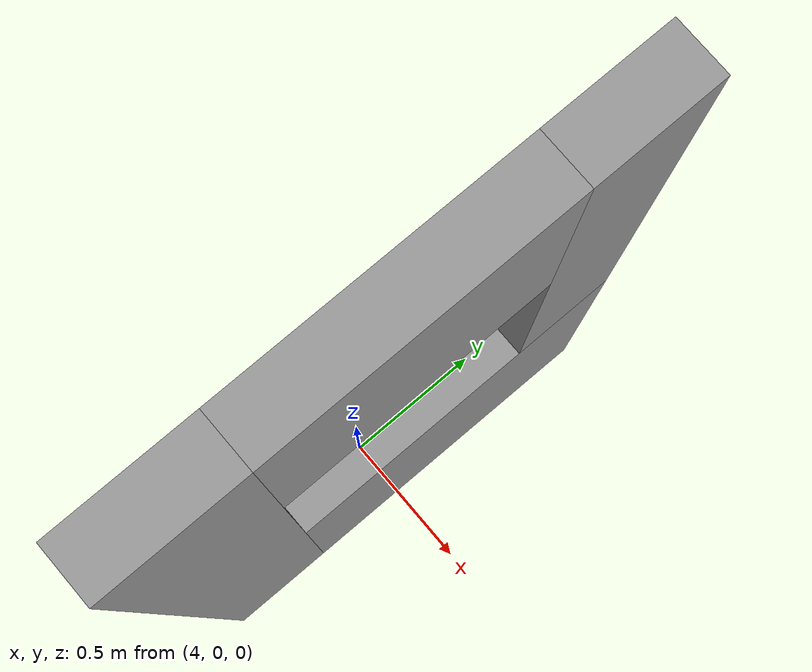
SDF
<?xml version='1.0'?>
<sdf version='1.7'>
  <model name='window.model'>
    <pose>2.1025 0.045 0 0 -0 0</pose>
    <link name='Wall_5'>
      <pose>2.0275 -0 0 0 -0 1.5708</pose>
      <visual name='Wall_5_Visual_0'>
        <pose>-0.5675 0 1.25 0 -0 0</pose>
        <geometry>
          <box>
            <size>0.365 0.15 2.5</size>
          </box>
        </geometry>
        <material>
          <script>
            <uri>file://media/materials/scripts/gazebo.material</uri>
            <name>Gazebo/Grey</name>
          </script>
          <ambient>1 1 1 1</ambient>
        </material>
        <meta>
          <layer>0</layer>
        </meta>
      </visual>
      <collision name='Wall_5_Collision_0'>
        <geometry>
          <box>
            <size>0.365 0.15 2.5</size>
          </box>
        </geometry>
        <pose>-0.5675 0 1.25 0 -0 0</pose>
      </collision>
      <visual name='Wall_5_Visual_1'>
        <pose>0.1825 0 0.5 0 -0 0</pose>
        <geometry>
          <box>
            <size>1.135 0.15 1</size>
          </box>
        </geometry>
        <material>
          <script>
            <uri>file://media/materials/scripts/gazebo.material</uri>
            <name>Gazebo/Grey</name>
          </script>
          <ambient>1 1 1 1</ambient>
        </material>
        <meta>
          <layer>0</layer>
        </meta>
      </visual>
      <collision name='Wall_5_Collision_1'>
        <geometry>
          <box>
            <size>1.135 0.15 1</size>
          </box>
        </geometry>
        <pose>0.1825 0 0.5 0 -0 0</pose>
      </collision>
      <visual name='Wall_5_Visual_2'>
        <pose>0.5825 0 1.75 0 -0 0</pose>
        <geometry>
          <box>
            <size>0.335 0.15 1.5</size>
          </box>
        </geometry>
        <material>
          <script>
            <uri>file://media/materials/scripts/gazebo.material</uri>
            <name>Gazebo/Grey</name>
          </script>
          <ambient>1 1 1 1</ambient>
        </material>
        <meta>
          <layer>0</layer>
        </meta>
      </visual>
      <collision name='Wall_5_Collision_2'>
        <geometry>
          <box>
            <size>0.335 0.15 1.5</size>
          </box>
        </geometry>
        <pose>0.5825 0 1.75 0 -0 0</pose>
      </collision>
      <visual name='Wall_5_Visual_3'>
        <pose>0.015 0 2.15 0 -0 0</pose>
        <geometry>
          <box>
            <size>0.8 0.15 0.7</size>
          </box>
        </geometry>
        <material>
          <script>
            <uri>file://media/materials/scripts/gazebo.material</uri>
            <name>Gazebo/Grey</name>
          </script>
          <ambient>1 1 1 1</ambient>
        </material>
        <meta>
          <layer>0</layer>
        </meta>
      </visual>
      <collision name='Wall_5_Collision_3'>
        <geometry>
          <box>
            <size>0.8 0.15 0.7</size>
          </box>
        </geometry>
        <pose>0.015 0 2.15 0 -0 0</pose>
      </collision>
    </link>
    <static>1</static>
  </model>
</sdf>
